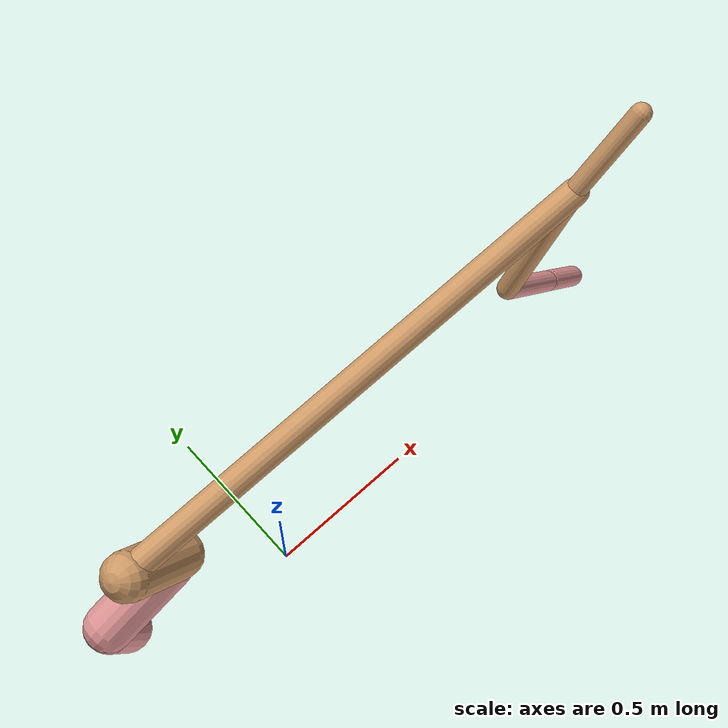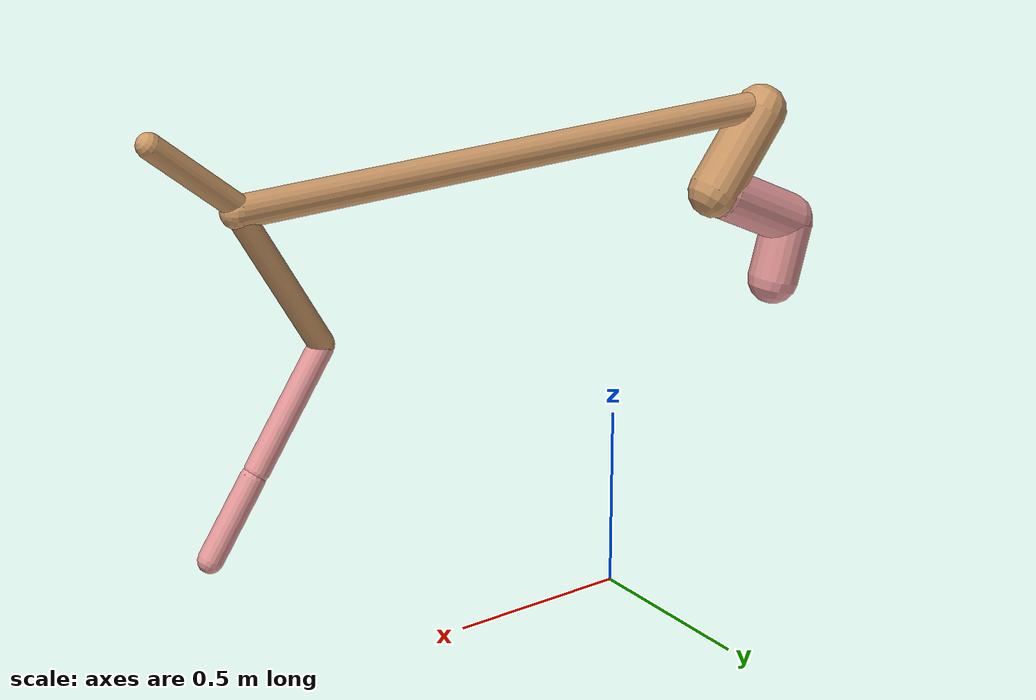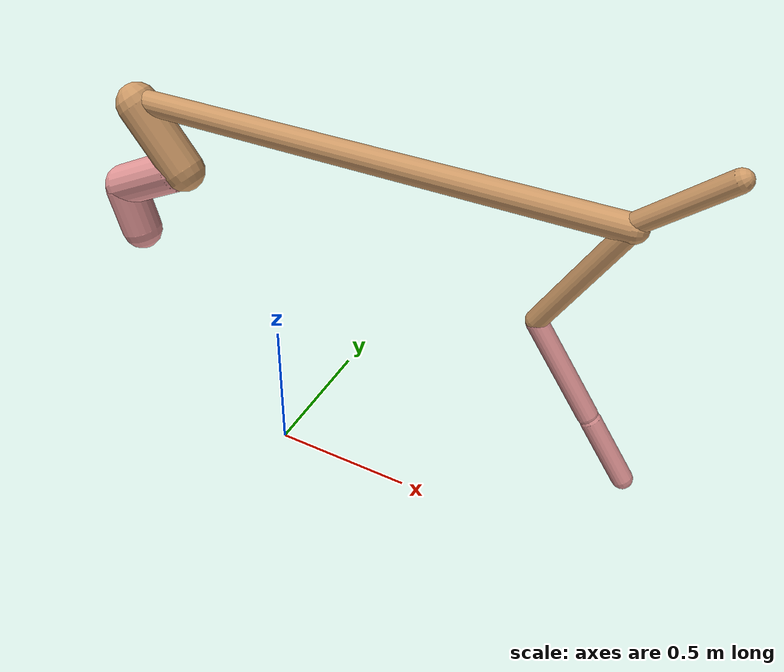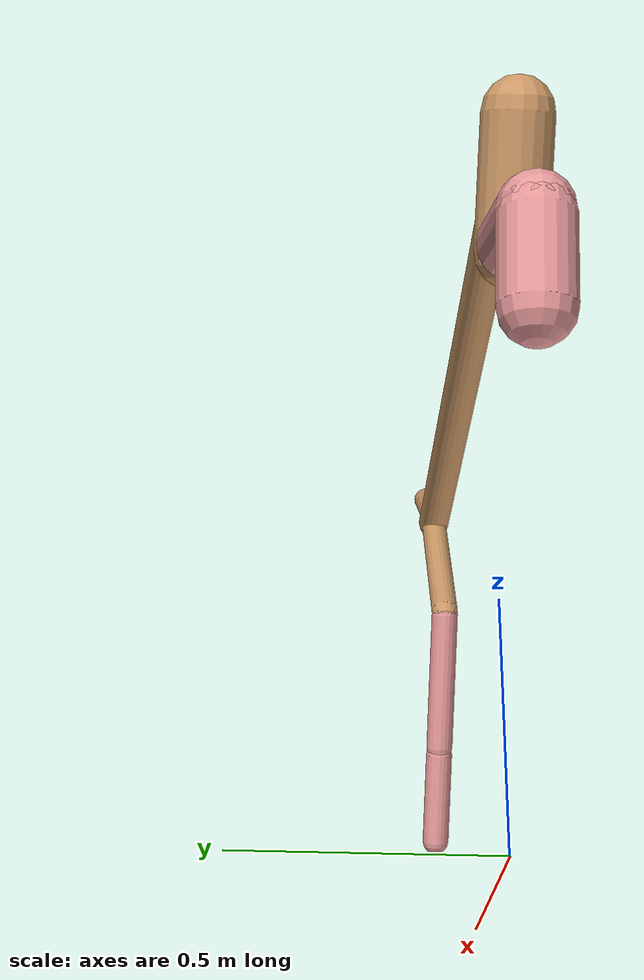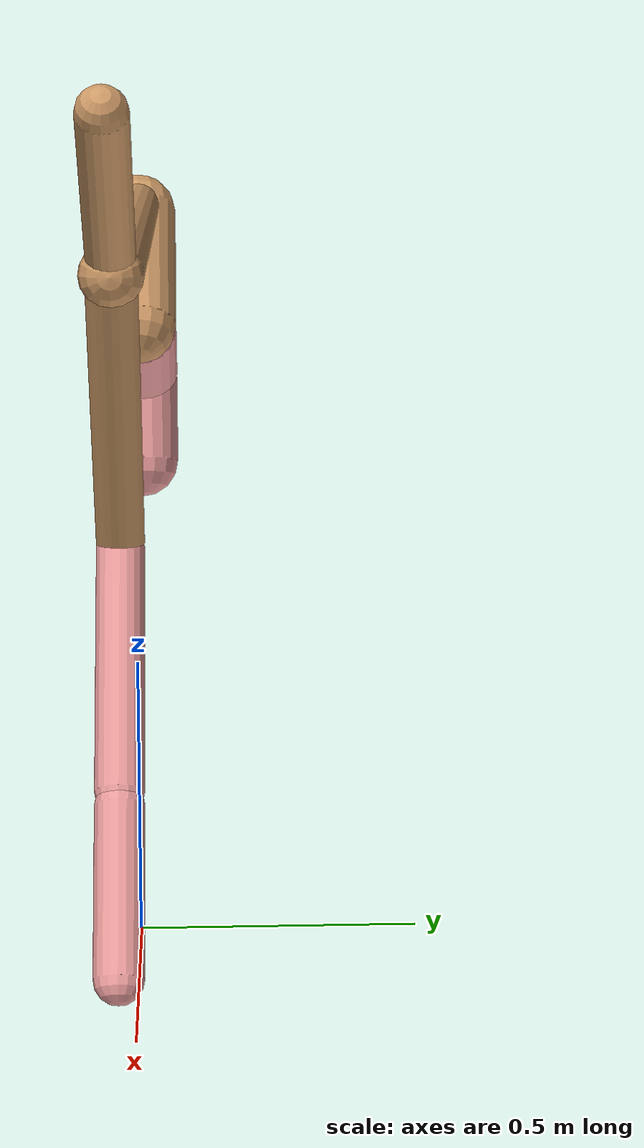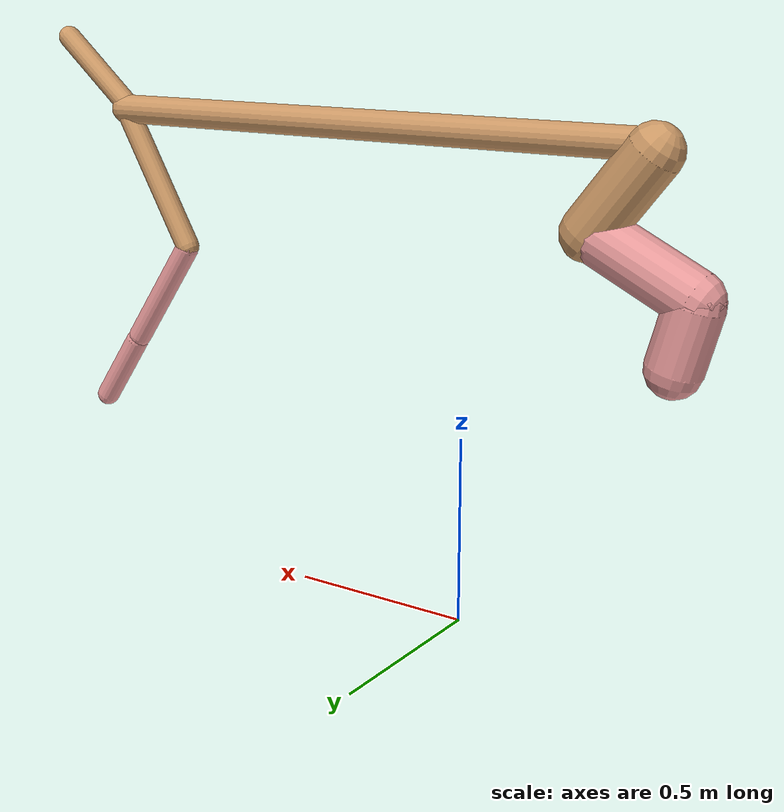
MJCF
<mujoco model="cheetah">
  <compiler angle="radian" coordinate="local" inertiafromgeom="true" settotalmass="14" />
  <default>
    <joint armature=".1" damping=".01" limited="true" solimplimit="0 .8 .03" solreflimit=".02 1" stiffness="8" />
    <geom conaffinity="0" condim="3" contype="1" friction="0.8 .1 .1" rgba="0.8 0.6 .4 1" solimp="0.0 0.8 0.01" solref="0.02 1" />
    <motor ctrllimited="true" ctrlrange="-1 1" />
  </default>
  <size nstack="300000" nuser_geom="1" />
  <option gravity="0 0 -9.81" timestep="0.01" />
  <worldbody>
    <body name="torso" pos="0.0 0.0 1.2806337801661394">
      <joint armature="0" axis="1 0 0" damping="0" limited="false" name="ignorex" pos="0 0 0" stiffness="0" type="slide" />
      <joint armature="0" axis="0 0 1" damping="0" limited="false" name="ignorez" pos="0 0 0" stiffness="0" type="slide" />
      <joint armature="0" axis="0 1 0" damping="0" limited="false" name="ignorey" pos="0 0 0" stiffness="0" type="hinge" />
      <geom fromto="-0.5 0.0 0.0 1.1237699387345428 0.0 0.0" name="torso" size="0.04042590072640641" type="capsule" />
      <geom axisangle="0 1 0 .87" name="head" pos="1.2237699387345429 0.0 0.1" size="0.031106950602556468 0.15" type="capsule" />

      <body name="bthigh" pos="-.5 0 0">
        <joint axis="0 1 0" damping="6" name="bthigh" pos="0 0 0" range="-.52 1.05" stiffness="240" type="hinge" />
        <geom axisangle="0 1 0 -3.8" name="bthigh" pos="0.08916976150657677 0.0 -0.11592068995854979" size="0.07115229598304049 0.12723708815909657" type="capsule" />
        <body name="bshin" pos="0.13833952301315353 0.0 -0.22184137991709957">
          <joint axis="0 1 0" damping="4.5" name="bshin" pos="0 0 0" range="-.785 .785" stiffness="180" type="hinge" />
          <geom axisangle="0 1 0 -2.03" name="bshin" pos="-0.1235645193015465 0.0 -0.06178225965077325" rgba="0.9 0.6 0.6 1" size="0.07115229598304049 0.13162457395768612" type="capsule" />
          <body name="bfoot" pos="-0.247129038603093 0.0 -0.1235645193015465">
            <joint axis="0 1 0" damping="3" name="bfoot" pos="0 0 0" range="-.4 .785" stiffness="120" type="hinge" />
            <geom axisangle="0 1 0 -.27" name="bfoot" pos="0.026597587254120276 0.0 -0.0859988654549889" rgba="0.9 0.6 0.6 1" size="0.07115229598304049 0.0824847330134833" type="capsule" />
            <inertial mass="10" />
          </body>
        </body>
      </body>
      <body name="fthigh" pos="1.1237699387345428 0.0 0.0">
        <joint axis="0 1 0" damping="4.5" name="fthigh" pos="0 0 0" range="-1.5 0.8" stiffness="180" type="hinge" />
        <geom axisangle="0 1 0 .52" name="fthigh" pos="-0.11070197028180949 0.0 -0.18977480619738768" size="0.032655866669727376 0.21377854891432696" type="capsule" />
        <body name="fshin" pos="-0.22140394056361898 0.0 -0.37954961239477536">
          <joint axis="0 1 0" damping="3" name="fshin" pos="0 0 0" range="-1.2 1.1" stiffness="120" type="hinge" />
          <geom axisangle="0 1 0 -.6" name="fshin" pos="0.10269382103996125 0.0 -0.1421914445168694" rgba="0.9 0.6 0.6 1" size="0.032655866669727376 0.17037989612720794" type="capsule" />
          <body name="ffoot" pos="0.2053876420799225 0.0 -0.2843828890337388">
            <joint axis="0 1 0" damping="1.5" name="ffoot" pos="0 0 0" range="-3.1 -0.3" stiffness="60" type="hinge" />
            <geom axisangle="0 1 0 -.6" name="ffoot" pos="0.06799032291616372 0.0 -0.10576272453625468" rgba="0.9 0.6 0.6 1" size="0.032655866669727376 0.11251502574438262" type="capsule" />
            <inertial mass="10" />
          </body>
        </body>
      </body>
    </body>
  </worldbody>
  <actuator>
    <motor gear="120" joint="bthigh" name="bthigh" />
    <motor gear="90" joint="bshin" name="bshin" />
    <motor gear="60" joint="bfoot" name="bfoot" />
    <motor gear="120" joint="fthigh" name="fthigh" />
    <motor gear="60" joint="fshin" name="fshin" />
    <motor gear="30" joint="ffoot" name="ffoot" />
  </actuator>
</mujoco>
